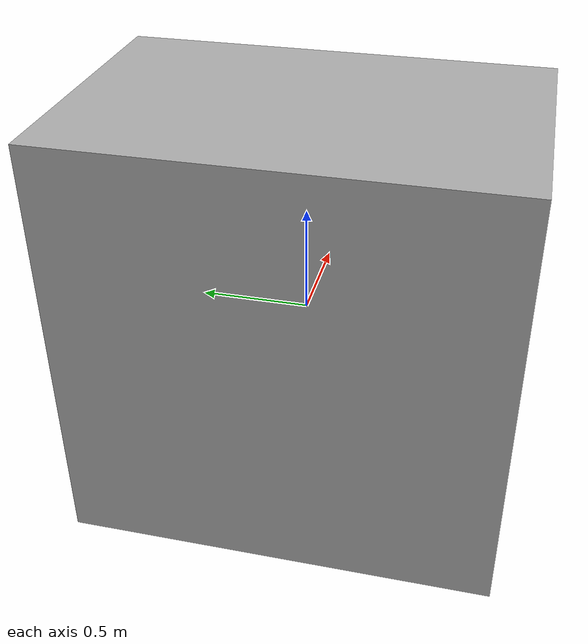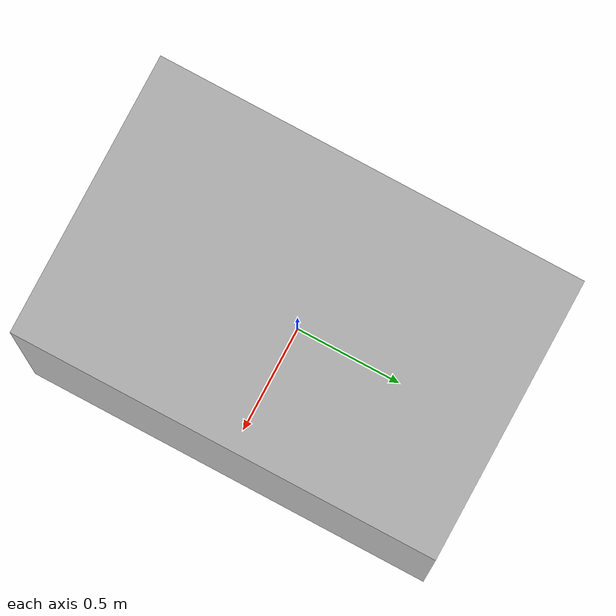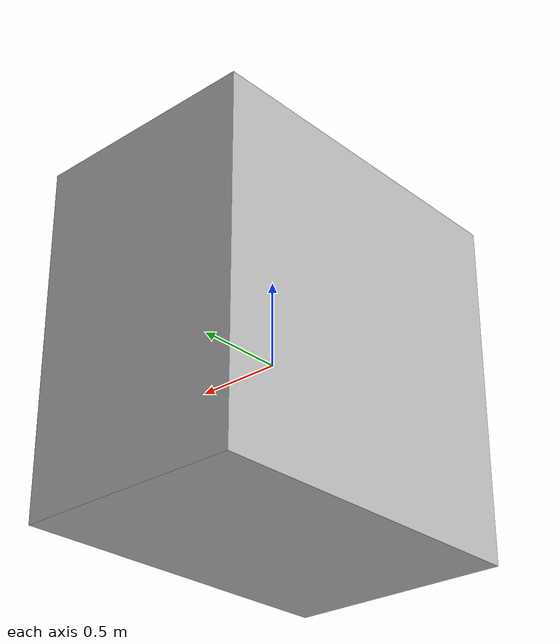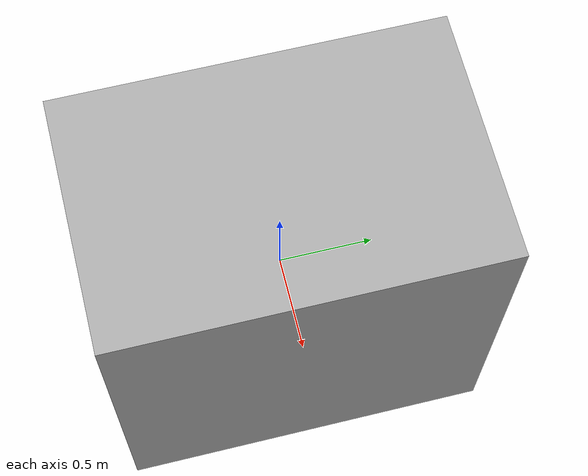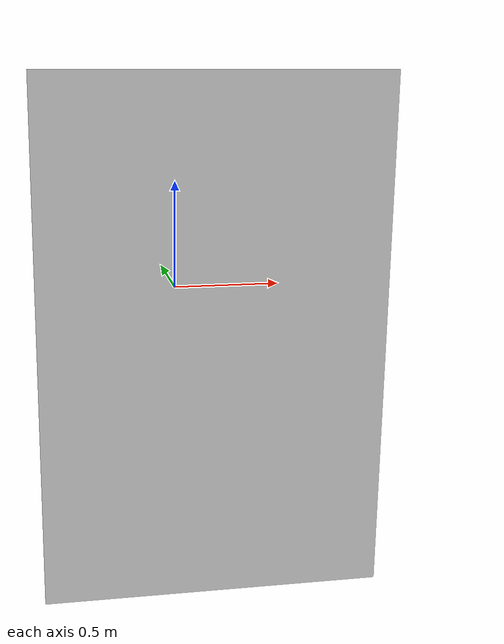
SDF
<?xml version="1.0" ?>

<sdf version="1.6">
  <model name="Aruco_1">
    <link name="link_0">
      <visual name="visual">
        <geometry>
          <mesh>
            <uri>meshes/aruco_1.dae</uri>
          </mesh>
        </geometry>
      </visual>
      <collision name="collision_0">
        <geometry>
          <mesh>
            <uri>meshes/aruco_1.dae</uri>
          </mesh>
        </geometry>
      </collision>
    </link>
  </model>
</sdf>
